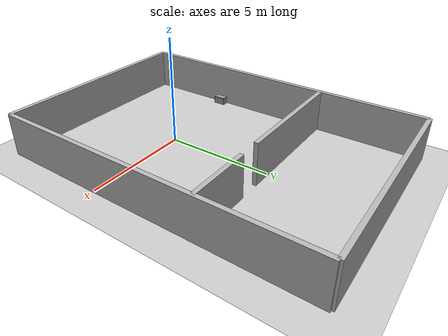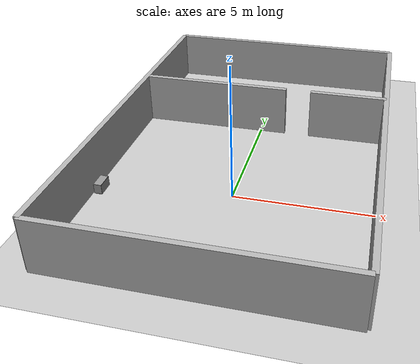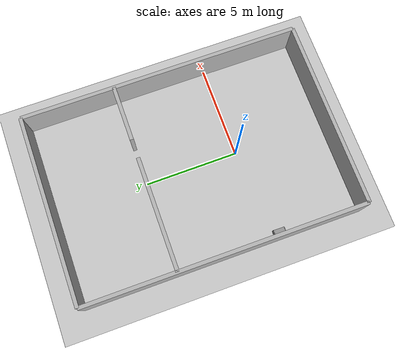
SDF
<sdf version="1.7">
 <world name="default">
  <physics type="ode">
   <ode>
    <solver>
     <type>quick</type>
     <iters>20</iters>
     <sor>1</sor>
     <use_dynamic_moi_rescaling>0</use_dynamic_moi_rescaling>
    </solver>
    <constraints>
     <cfm>0</cfm>
     <erp>0.2</erp>
     <contact_max_correcting_vel>100</contact_max_correcting_vel>
     <contact_surface_layer>0</contact_surface_layer>
    </constraints>
   </ode>
   <real_time_update_rate>1000</real_time_update_rate>
   <max_step_size>0.001</max_step_size>
   <real_time_factor>1</real_time_factor>
  </physics>
  <light name="sun" type="directional">
   <pose>0 0 10 0 -0 0</pose>
   <diffuse>0.8 0.8 0.8 1</diffuse>
   <specular>0.2 0.2 0.2 1</specular>
   <attenuation>
    <range>1000</range>
    <constant>0.9</constant>
    <linear>0.01</linear>
    <quadratic>0.001</quadratic>
   </attenuation>
   <direction>-0.5 0.1 -0.9</direction>
   <spot><inner_angle>0</inner_angle><outer_angle>0</outer_angle><falloff>0</falloff></spot>
  </light>
  <model name="ground_plane">
   <static>1</static>
   <link name="link">
    <collision name="collision">
     <geometry><plane><normal>0 0 1</normal><size>100 100</size></plane></geometry>
     <surface>
      <contact><collide_bitmask>65535</collide_bitmask></contact>
      <friction><ode><mu>100</mu><mu2>50</mu2></ode></friction>
     </surface>
    </collision>
    <visual name="visual">
     <cast_shadows>0</cast_shadows>
     <geometry><plane><normal>0 0 1</normal><size>100 100</size></plane></geometry>
     <material>
      <script><uri>file://media/materials/scripts/gazebo.material</uri><name>Gazebo/Grey</name></script>
     </material>
    </visual>
   </link>
  </model>
  <model name="wall_1_model">
   <pose>0 -5 1 0 -0 0</pose>
   <static>1</static>
   <link name="wall_1_body">
    <inertial>
     <mass>1</mass>
     <inertia><ixx>1</ixx><ixy>0</ixy><ixz>0</ixz><iyy>1</iyy><iyz>0</iyz><izz>1</izz></inertia>
    </inertial>
    <collision name="collision"><geometry><box><size>10 0.2 2</size></box></geometry></collision>
    <visual name="visual"><geometry><box><size>10 0.2 2</size></box></geometry></visual>
   </link>
  </model>
  <model name="wall_2_model">
   <pose>0 10 1 0 -0 0</pose>
   <static>1</static>
   <link name="wall_2_body">
    <inertial>
     <mass>1</mass>
     <inertia><ixx>1</ixx><ixy>0</ixy><ixz>0</ixz><iyy>1</iyy><iyz>0</iyz><izz>1</izz></inertia>
    </inertial>
    <collision name="collision"><geometry><box><size>10 0.2 2</size></box></geometry></collision>
    <visual name="visual"><geometry><box><size>10 0.2 2</size></box></geometry></visual>
   </link>
  </model>
  <model name="wall_3_model">
   <pose>-5 2.5 1 0 -0 0</pose>
   <static>1</static>
   <link name="wall_3_body">
    <inertial>
     <mass>1</mass>
     <inertia><ixx>1</ixx><ixy>0</ixy><ixz>0</ixz><iyy>1</iyy><iyz>0</iyz><izz>1</izz></inertia>
    </inertial>
    <collision name="collision"><geometry><box><size>0.2 15 2</size></box></geometry></collision>
    <visual name="visual"><geometry><box><size>0.2 15 2</size></box></geometry></visual>
   </link>
  </model>
  <model name="wall_4_model">
   <pose>5 2.5 1 0 -0 0</pose>
   <static>1</static>
   <link name="wall_4_body">
    <inertial>
     <mass>1</mass>
     <inertia><ixx>1</ixx><ixy>0</ixy><ixz>0</ixz><iyy>1</iyy><iyz>0</iyz><izz>1</izz></inertia>
    </inertial>
    <collision name="collision"><geometry><box><size>0.2 15 2</size></box></geometry></collision>
    <visual name="visual"><geometry><box><size>0.2 15 2</size></box></geometry></visual>
   </link>
  </model>
  <model name="wall_5_model">
   <pose>-2 5 1 0 -0 0</pose>
   <static>1</static>
   <link name="wall_5_body">
    <inertial>
     <mass>1</mass>
     <inertia><ixx>1</ixx><ixy>0</ixy><ixz>0</ixz><iyy>1</iyy><iyz>0</iyz><izz>1</izz></inertia>
    </inertial>
    <collision name="collision"><geometry><box><size>6 0.2 2</size></box></geometry></collision>
    <visual name="visual"><geometry><box><size>6 0.2 2</size></box></geometry></visual>
   </link>
  </model>
  <model name="wall_6_model">
   <pose>3.5 5 1 0 -0 0</pose>
   <static>1</static>
   <link name="wall_6_body">
    <inertial>
     <mass>1</mass>
     <inertia><ixx>1</ixx><ixy>0</ixy><ixz>0</ixz><iyy>1</iyy><iyz>0</iyz><izz>1</izz></inertia>
    </inertial>
    <collision name="collision"><geometry><box><size>3 0.2 2</size></box></geometry></collision>
    <visual name="visual"><geometry><box><size>3 0.2 2</size></box></geometry></visual>
   </link>
  </model>
  <gravity>0 0 -9.81</gravity>
  <magnetic_field>6e-06 2.3e-05 -4.2e-05</magnetic_field>
  <atmosphere type="adiabatic"/>
  <scene><ambient>0.4 0.4 0.4 1</ambient><background>0.7 0.7 0.7 1</background><shadows>1</shadows></scene>
  <spherical_coordinates>
   <surface_model>EARTH_WGS84</surface_model>
   <latitude_deg>0</latitude_deg>
   <longitude_deg>0</longitude_deg>
   <elevation>0</elevation>
   <heading_deg>0</heading_deg>
  </spherical_coordinates>
  <model name="Wall_Cabinet_24x15W">
   <link name="Wall_41">
    <pose>0 0 0.01 0 -0 0</pose>
    <inertial>
     <mass>1.4983</mass>
     <inertia><ixx>0.011</ixx><iyy>0.0571</iyy><izz>0.0462</izz><ixy>0</ixy><ixz>0</ixz><iyz>0</iyz></inertia>
    </inertial>
    <collision name="Wall_41_Collision"><geometry><box><size>0.608 0.296 0.02</size></box></geometry></collision>
    <visual name="Wall_41_Visual">
     <geometry><box><size>0.608 0.296 0.02</size></box></geometry>
     <material>
      <script><uri>file://media/materials/scripts/gazebo.material</uri><name>Gazebo/Grey</name></script>
      <ambient>1 1 1 1</ambient>
     </material>
    </visual>
    <pose>0.000184 0.181953 0 0 -0 0</pose>
   </link>
   <joint name="41_43" type="fixed">
    <pose>-0.304 0 0 0 -0 0</pose>
    <parent>Wall_43</parent>
    <child>Wall_41</child>
    <axis><xyz>0 0 1</xyz><limit><lower>-1e+16</lower><upper>1e+16</upper></limit></axis>
   </joint>
   <joint name="41_45" type="fixed">
    <pose>0.304 0 0 0 -0 0</pose>
    <parent>Wall_45</parent>
    <child>Wall_41</child>
    <axis><xyz>0 0 1</xyz><limit><lower>-1e+16</lower><upper>1e+16</upper></limit></axis>
   </joint>
   <joint name="41_49" type="fixed">
    <pose>0 -0.148 0 0 -0 0</pose>
    <parent>Wall_49</parent>
    <child>Wall_41</child>
    <axis><xyz>0 0 1</xyz><limit><lower>-1e+16</lower><upper>1e+16</upper></limit></axis>
   </joint>
   <link name="Wall_43">
    <pose>-0.294 0 0.192 0 -0 0</pose>
    <inertial>
     <mass>0.9463</mass>
     <inertia><ixx>0.0069</ixx><iyy>0.0185</iyy><izz>0.0117</izz><ixy>0</ixy><ixz>0</ixz><iyz>0</iyz></inertia>
    </inertial>
    <collision name="Wall_43_Collision"><geometry><box><size>0.02 0.296 0.384</size></box></geometry></collision>
    <visual name="Wall_43_Visual">
     <geometry><box><size>0.02 0.296 0.384</size></box></geometry>
     <material>
      <script><uri>file://media/materials/scripts/gazebo.material</uri><name>Gazebo/Grey</name></script>
      <ambient>1 1 1 1</ambient>
     </material>
    </visual>
   </link>
   <link name="Wall_45">
    <pose>0.294 0 0.192 0 -0 0</pose>
    <inertial>
     <mass>0.9463</mass>
     <inertia><ixx>0.0069</ixx><iyy>0.0185</iyy><izz>0.0117</izz><ixy>0</ixy><ixz>0</ixz><iyz>0</iyz></inertia>
    </inertial>
    <collision name="Wall_45_Collision"><geometry><box><size>0.02 0.296 0.384</size></box></geometry></collision>
    <visual name="Wall_45_Visual">
     <geometry><box><size>0.02 0.296 0.384</size></box></geometry>
     <material>
      <script><uri>file://media/materials/scripts/gazebo.material</uri><name>Gazebo/Grey</name></script>
      <ambient>1 1 1 1</ambient>
     </material>
    </visual>
   </link>
   <link name="Wall_47">
    <pose>0 0 0.374 0 -0 0</pose>
    <inertial>
     <mass>1.4983</mass>
     <inertia><ixx>0.011</ixx><iyy>0.0571</iyy><izz>0.0462</izz><ixy>0</ixy><ixz>0</ixz><iyz>0</iyz></inertia>
    </inertial>
    <collision name="Wall_47_Collision"><geometry><box><size>0.608 0.296 0.02</size></box></geometry></collision>
    <visual name="Wall_47_Visual">
     <geometry><box><size>0.608 0.296 0.02</size></box></geometry>
     <material>
      <script><uri>file://media/materials/scripts/gazebo.material</uri><name>Gazebo/Grey</name></script>
      <ambient>1 1 1 1</ambient>
     </material>
    </visual>
   </link>
   <joint name="47_43" type="fixed">
    <pose>-0.304 0 0 0 -0 0</pose>
    <parent>Wall_43</parent>
    <child>Wall_47</child>
    <axis><xyz>0 0 1</xyz><limit><lower>-1e+16</lower><upper>1e+16</upper></limit></axis>
   </joint>
   <joint name="47_45" type="fixed">
    <pose>0.304 0 0 0 -0 0</pose>
    <parent>Wall_45</parent>
    <child>Wall_47</child>
    <axis><xyz>0 0 1</xyz><limit><lower>-1e+16</lower><upper>1e+16</upper></limit></axis>
   </joint>
   <joint name="47_49" type="fixed">
    <pose>0 -0.148 0 0 -0 0</pose>
    <parent>Wall_49</parent>
    <child>Wall_47</child>
    <axis><xyz>0 0 1</xyz><limit><lower>-1e+16</lower><upper>1e+16</upper></limit></axis>
   </joint>
   <link name="Wall_49">
    <pose>0 -0.138 0.19 0 -0 0</pose>
    <inertial>
     <mass>1.9108</mass>
     <inertia><ixx>0.0231</ixx><iyy>0.0582</iyy><izz>0.0811</izz><ixy>0</ixy><ixz>0</ixz><iyz>0</iyz></inertia>
    </inertial>
    <collision name="Wall_49_Collision"><geometry><box><size>0.604 0.02 0.38</size></box></geometry></collision>
    <visual name="Wall_49_Visual">
     <geometry><box><size>0.604 0.02 0.38</size></box></geometry>
     <material>
      <script><uri>file://media/materials/scripts/gazebo.material</uri><name>Gazebo/Grey</name></script>
      <ambient>1 1 1 1</ambient>
     </material>
    </visual>
   </link>
   <joint name="49_43" type="fixed">
    <pose>-0.302 0 0 0 -0 0</pose>
    <parent>Wall_41</parent>
    <child>Wall_49</child>
    <axis><xyz>0 1 0</xyz><limit><lower>-1e+16</lower><upper>1e+16</upper></limit></axis>
   </joint>
   <joint name="49_45" type="fixed">
    <pose>0.302 0 0 0 -0 0</pose>
    <parent>Wall_45</parent>
    <child>Wall_49</child>
    <axis><xyz>0 1 0</xyz><limit><lower>-1e+16</lower><upper>1e+16</upper></limit></axis>
   </joint>
   <static>1</static>
   <pose>-4.70553 -0.615377 0 -0 -0.015573 1.55975</pose>
  </model>
 </world>
</sdf>
